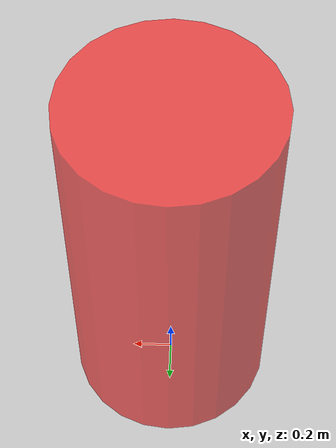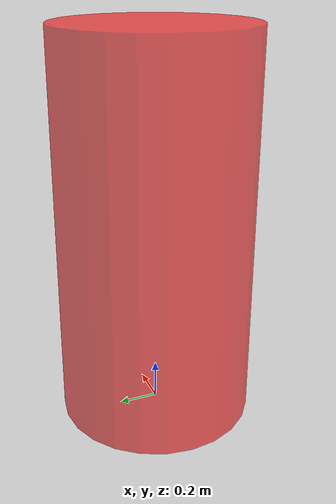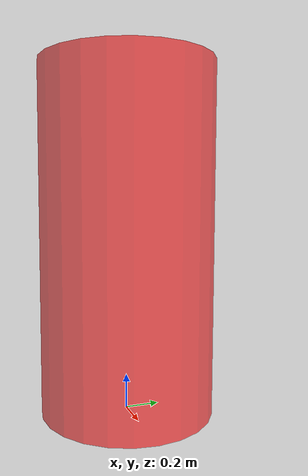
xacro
<robot xmlns:xacro="http://www.ros.org/wiki/xacro" name="obstacle">
  <xacro:arg name="id" default="0" />
  <xacro:arg name="v_x" default="0.0" />
  <xacro:arg name="v_y" default="0.0" />

  <link name="link_$(arg id)">
    <inertial>
      <origin xyz="0.0 0.0 1.0" rpy="0.0 0.0 0.0" />
      <mass value="1000.0" />
      <inertia ixx="1" ixy="0.0" ixz="0.0" iyy="1" iyz="0.0" izz="1" />
    </inertial>

    <visual>
      <origin xyz="0.0 0.0 1.0" rpy="0.0 0.0 0.0" />
      <geometry>
        <cylinder radius="0.5" length="2.0" />
      </geometry>
      <material name="obstacle_material">
        <color rgba="1.0 0.0 0.0 0.6" />
        <texture filename="" />
      </material>
    </visual>
    <collision>
      <origin xyz="0.0 0.0 1.0" rpy="0.0 0.0 0.0" />
      <geometry>
        <cylinder radius="0.5" length="2.0" />
      </geometry>
    </collision>
  </link>

  <gazebo>
    <plugin name="gz::sim::systems::VelocityControl"
      filename="libgz-sim-velocity-control-system.so">
      <topic>cmd_vel_$(arg id)</topic>
      <initial_linear>$(arg v_x) $(arg v_y) 0.0</initial_linear>
    </plugin>
  </gazebo>
</robot>
